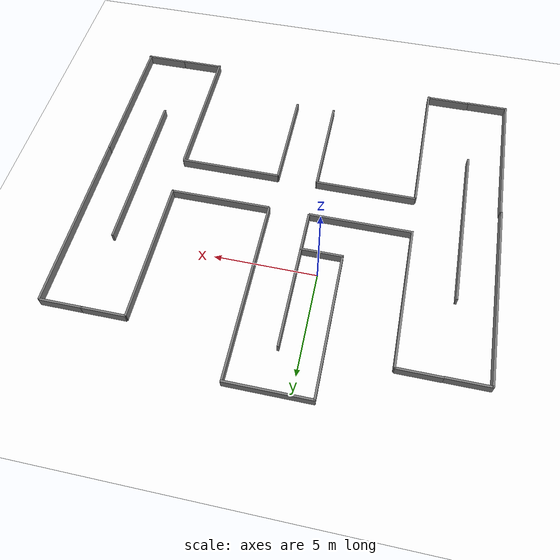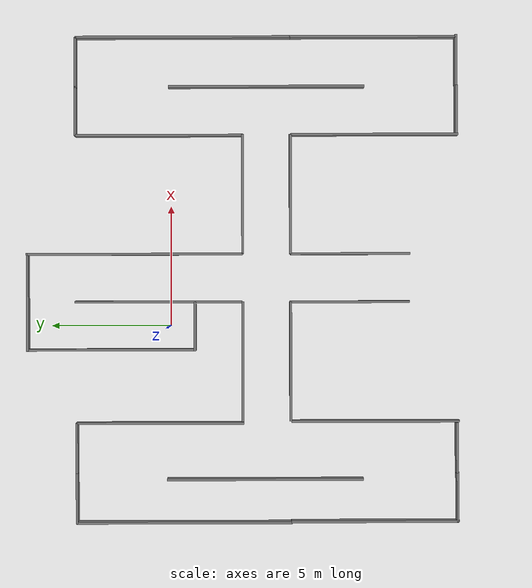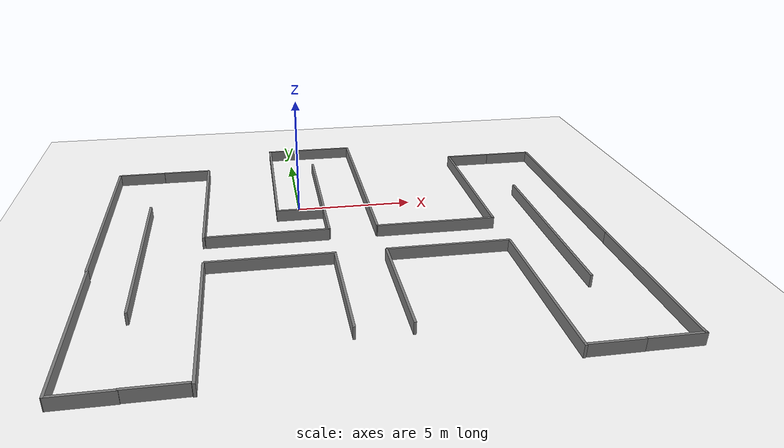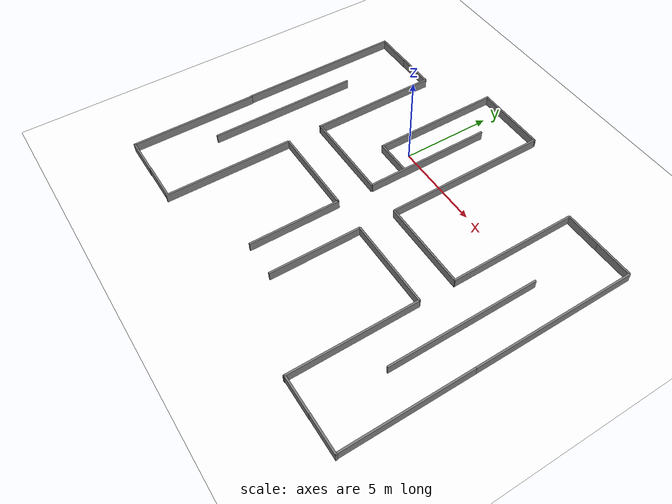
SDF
<sdf version="1.9">
 <world name="step_by_step_city">
  <physics name="1ms" type="ignored">
   <max_step_size>0.001</max_step_size>
   <real_time_factor>1</real_time_factor>
   <real_time_update_rate>1000</real_time_update_rate>
  </physics>
  <plugin name="gz::sim::systems::Physics" filename="ignition-gazebo-physics-system"/>
  <plugin name="gz::sim::systems::UserCommands" filename="ignition-gazebo-user-commands-system"/>
  <plugin name="gz::sim::systems::SceneBroadcaster" filename="ignition-gazebo-scene-broadcaster-system"/>
  <plugin name="gz::sim::systems::Contact" filename="ignition-gazebo-contact-system"/>
  <gravity>0 0 -9.8</gravity>
  <magnetic_field>6e-06 2.3e-05 -4.2e-05</magnetic_field>
  <atmosphere type="adiabatic"/>
  <scene><ambient>0.4 0.4 0.4 1</ambient><background>0.7 0.7 0.7 1</background><shadows>true</shadows></scene>
  <model name="ground_plane">
   <static>true</static>
   <link name="link">
    <collision name="collision">
     <geometry><plane><normal>0 0 1</normal><size>100 100</size></plane></geometry>
    </collision>
    <visual name="visual">
     <geometry><plane><normal>0 0 1</normal><size>100 100</size></plane></geometry>
     <material>
      <ambient>0.8 0.8 0.8</ambient>
      <diffuse>1 1 1 1</diffuse>
      <specular>0.2 0.2 0.2 1</specular>
     </material>
    </visual>
    <inertial>
     <mass>1</mass>
     <inertia><ixx>1</ixx><ixy>0</ixy><ixz>0</ixz><iyy>1</iyy><iyz>0</iyz><izz>1</izz></inertia>
    </inertial>
   </link>
  </model>
  <model name="wall_spawn_back">
   <static>true</static>
   <pose>0 -1 0.25 0 -0 0</pose>
   <link name="link">
    <collision name="collision"><geometry><box><size>2.1 0.1 0.5</size></box></geometry></collision>
    <visual name="visual">
     <geometry><box><size>2.1 0.1 0.5</size></box></geometry>
     <material><ambient>0.5 0.5 0.5 1</ambient></material>
    </visual>
    <inertial>
     <mass>1</mass>
     <inertia><ixx>1</ixx><ixy>0</ixy><ixz>0</ixz><iyy>1</iyy><iyz>0</iyz><izz>1</izz></inertia>
    </inertial>
   </link>
  </model>
  <model name="wall_north_left">
   <static>true</static>
   <pose>-1 2.5 0.25 0 -0 0</pose>
   <link name="link">
    <collision name="collision"><geometry><box><size>0.1 7 0.5</size></box></geometry></collision>
    <visual name="visual">
     <geometry><box><size>0.1 7 0.5</size></box></geometry>
     <material><ambient>0.5 0.5 0.5 1</ambient></material>
    </visual>
    <inertial>
     <mass>1</mass>
     <inertia><ixx>1</ixx><ixy>0</ixy><ixz>0</ixz><iyy>1</iyy><iyz>0</iyz><izz>1</izz></inertia>
    </inertial>
   </link>
  </model>
  <model name="wall_center_div">
   <static>true</static>
   <pose>1 0.51606 0.25 0 -0 0</pose>
   <link name="link">
    <collision name="collision"><geometry><box><size>0.1 7 0.5</size></box></geometry></collision>
    <visual name="visual">
     <geometry><box><size>0.1 7 0.5</size></box></geometry>
     <material><ambient>0.5 0.5 0.5 1</ambient></material>
    </visual>
    <inertial>
     <mass>1</mass>
     <inertia><ixx>1</ixx><ixy>0</ixy><ixz>0</ixz><iyy>1</iyy><iyz>0</iyz><izz>1</izz></inertia>
    </inertial>
   </link>
  </model>
  <model name="wall_uturn_outer">
   <static>true</static>
   <pose>1 6 0.25 0 -0 0</pose>
   <link name="link">
    <collision name="collision"><geometry><box><size>4.1 0.1 0.5</size></box></geometry></collision>
    <visual name="visual">
     <geometry><box><size>4.1 0.1 0.5</size></box></geometry>
     <material><ambient>0.5 0.5 0.5 1</ambient></material>
    </visual>
    <inertial>
     <mass>1</mass>
     <inertia><ixx>1</ixx><ixy>0</ixy><ixz>0</ixz><iyy>1</iyy><iyz>0</iyz><izz>1</izz></inertia>
    </inertial>
   </link>
  </model>
  <model name="wall_south_right">
   <static>true</static>
   <pose>3 1.5 0.25 0 -0 0</pose>
   <link name="link">
    <collision name="collision"><geometry><box><size>0.1 9 0.5</size></box></geometry></collision>
    <visual name="visual">
     <geometry><box><size>0.1 9 0.5</size></box></geometry>
     <material><ambient>0.5 0.5 0.5 1</ambient></material>
    </visual>
    <inertial>
     <mass>1</mass>
     <inertia><ixx>1</ixx><ixy>0</ixy><ixz>0</ixz><iyy>1</iyy><iyz>0</iyz><izz>1</izz></inertia>
    </inertial>
   </link>
  </model>
  <model name="wall_plus_west_top">
   <static>true</static>
   <pose>-1.5 -3 0.25 0 -0 0</pose>
   <link name="link">
    <collision name="collision"><geometry><box><size>5 0.1 0.5</size></box></geometry></collision>
    <visual name="visual">
     <geometry><box><size>5 0.1 0.5</size></box></geometry>
     <material><ambient>0.5 0.5 0.5 1</ambient></material>
    </visual>
    <inertial>
     <mass>1</mass>
     <inertia><ixx>1</ixx><ixy>0</ixy><ixz>0</ixz><iyy>1</iyy><iyz>0</iyz><izz>1</izz></inertia>
    </inertial>
   </link>
  </model>
  <model name="wall_plus_west_bot">
   <static>true</static>
   <pose>-1.5 -5 0.25 0 -0 0</pose>
   <link name="link">
    <collision name="collision"><geometry><box><size>5 0.1 0.5</size></box></geometry></collision>
    <visual name="visual">
     <geometry><box><size>5 0.1 0.5</size></box></geometry>
     <material><ambient>0.5 0.5 0.5 1</ambient></material>
    </visual>
    <inertial>
     <mass>1</mass>
     <inertia><ixx>1</ixx><ixy>0</ixy><ixz>0</ixz><iyy>1</iyy><iyz>0</iyz><izz>1</izz></inertia>
    </inertial>
   </link>
  </model>
  <model name="wall_plus_east_top">
   <static>true</static>
   <pose>5.5 -3 0.25 0 -0 0</pose>
   <link name="link">
    <collision name="collision"><geometry><box><size>5 0.1 0.5</size></box></geometry></collision>
    <visual name="visual">
     <geometry><box><size>5 0.1 0.5</size></box></geometry>
     <material><ambient>0.5 0.5 0.5 1</ambient></material>
    </visual>
    <inertial>
     <mass>1</mass>
     <inertia><ixx>1</ixx><ixy>0</ixy><ixz>0</ixz><iyy>1</iyy><iyz>0</iyz><izz>1</izz></inertia>
    </inertial>
   </link>
  </model>
  <model name="wall_plus_east_bot">
   <static>true</static>
   <pose>5.5 -5 0.25 0 -0 0</pose>
   <link name="link">
    <collision name="collision"><geometry><box><size>5 0.1 0.5</size></box></geometry></collision>
    <visual name="visual">
     <geometry><box><size>5 0.1 0.5</size></box></geometry>
     <material><ambient>0.5 0.5 0.5 1</ambient></material>
    </visual>
    <inertial>
     <mass>1</mass>
     <inertia><ixx>1</ixx><ixy>0</ixy><ixz>0</ixz><iyy>1</iyy><iyz>0</iyz><izz>1</izz></inertia>
    </inertial>
   </link>
  </model>
  <model name="wall_plus_fwd_left">
   <static>true</static>
   <pose>3 -7.5 0.25 0 -0 0</pose>
   <link name="link">
    <collision name="collision"><geometry><box><size>0.1 5 0.5</size></box></geometry></collision>
    <visual name="visual">
     <geometry><box><size>0.1 5 0.5</size></box></geometry>
     <material><ambient>0.5 0.5 0.5 1</ambient></material>
    </visual>
    <inertial>
     <mass>1</mass>
     <inertia><ixx>1</ixx><ixy>0</ixy><ixz>0</ixz><iyy>1</iyy><iyz>0</iyz><izz>1</izz></inertia>
    </inertial>
   </link>
  </model>
  <model name="wall_east_t_outer">
   <static>true</static>
   <pose>10 -4 0.25 0 -0 0</pose>
   <link name="link">
    <collision name="collision"><geometry><box><size>0.1 8.2 0.5</size></box></geometry></collision>
    <visual name="visual">
     <geometry><box><size>0.1 8.2 0.5</size></box></geometry>
     <material><ambient>0.5 0.5 0.5 1</ambient></material>
    </visual>
    <inertial>
     <mass>1</mass>
     <inertia><ixx>1</ixx><ixy>0</ixy><ixz>0</ixz><iyy>1</iyy><iyz>0</iyz><izz>1</izz></inertia>
    </inertial>
   </link>
  </model>
  <model name="wall_east_t_cap_top">
   <static>true</static>
   <pose>9 3.9891 0.25 0 -0 0</pose>
   <link name="link">
    <collision name="collision"><geometry><box><size>2.1 0.1 0.5</size></box></geometry></collision>
    <visual name="visual">
     <geometry><box><size>2.1 0.1 0.5</size></box></geometry>
     <material><ambient>0.5 0.5 0.5 1</ambient></material>
    </visual>
    <inertial>
     <mass>1</mass>
     <inertia><ixx>1</ixx><ixy>0</ixy><ixz>0</ixz><iyy>1</iyy><iyz>0</iyz><izz>1</izz></inertia>
    </inertial>
   </link>
  </model>
  <model name="wall_east_t_cap_bot">
   <static>true</static>
   <pose>9 -11.9384 0.25 0 -0 0</pose>
   <link name="link">
    <collision name="collision"><geometry><box><size>2.1 0.1 0.5</size></box></geometry></collision>
    <visual name="visual">
     <geometry><box><size>2.1 0.1 0.5</size></box></geometry>
     <material><ambient>0.5 0.5 0.5 1</ambient></material>
    </visual>
    <inertial>
     <mass>1</mass>
     <inertia><ixx>1</ixx><ixy>0</ixy><ixz>0</ixz><iyy>1</iyy><iyz>0</iyz><izz>1</izz></inertia>
    </inertial>
   </link>
  </model>
  <model name="wall_center_div_1">
   <static>true</static>
   <pose>7.96048 0.482475 0.25 0 -0 0</pose>
   <link name="link">
    <collision name="collision"><geometry><box><size>0.1 7 0.5</size></box></geometry></collision>
    <visual name="visual">
     <geometry><box><size>0.1 7 0.5</size></box></geometry>
     <material><ambient>0.5 0.5 0.5 1</ambient></material>
    </visual>
   </link>
  </model>
  <model name="wall_center_div_2">
   <static>true</static>
   <pose>7.98632 -8.51239 0.25 0 -0 0</pose>
   <link name="link">
    <collision name="collision"><geometry><box><size>0.1 7 0.5</size></box></geometry></collision>
    <visual name="visual">
     <geometry><box><size>0.1 7 0.5</size></box></geometry>
     <material><ambient>0.5 0.5 0.5 1</ambient></material>
    </visual>
   </link>
  </model>
  <model name="wall_south_right_1">
   <static>true</static>
   <pose>12.069 -0.504548 0.25 0 -0 0</pose>
   <link name="link">
    <collision name="collision"><geometry><box><size>0.1 9 0.5</size></box></geometry></collision>
    <visual name="visual">
     <geometry><box><size>0.1 9 0.5</size></box></geometry>
     <material><ambient>0.5 0.5 0.5 1</ambient></material>
    </visual>
   </link>
  </model>
  <model name="wall_east_t_cap_top_1">
   <static>true</static>
   <pose>11.0163 3.98861 0.25 0 -0 0</pose>
   <link name="link">
    <collision name="collision"><geometry><box><size>2.1 0.1 0.5</size></box></geometry></collision>
    <visual name="visual">
     <geometry><box><size>2.1 0.1 0.5</size></box></geometry>
     <material><ambient>0.5 0.5 0.5 1</ambient></material>
    </visual>
   </link>
  </model>
  <model name="wall_east_t_cap_top_2">
   <static>true</static>
   <pose>11.095 -11.9302 0.25 0 -0 0</pose>
   <link name="link">
    <collision name="collision"><geometry><box><size>2.1 0.1 0.5</size></box></geometry></collision>
    <visual name="visual">
     <geometry><box><size>2.1 0.1 0.5</size></box></geometry>
     <material><ambient>0.5 0.5 0.5 1</ambient></material>
    </visual>
   </link>
  </model>
  <model name="wall_center_div_2_1">
   <static>true</static>
   <pose>12.0694 -8.46295 0.25 0 -0 0</pose>
   <link name="link">
    <collision name="collision"><geometry><box><size>0.1 7 0.5</size></box></geometry></collision>
    <visual name="visual">
     <geometry><box><size>0.1 7 0.5</size></box></geometry>
     <material><ambient>0.5 0.5 0.5 1</ambient></material>
    </visual>
   </link>
  </model>
  <model name="wall_center_div_2_2">
   <static>true</static>
   <pose>-4.00867 -8.53557 0.25 0 -0 0</pose>
   <link name="link">
    <collision name="collision"><geometry><box><size>0.1 7 0.5</size></box></geometry></collision>
    <visual name="visual">
     <geometry><box><size>0.1 7 0.5</size></box></geometry>
     <material><ambient>0.5 0.5 0.5 1</ambient></material>
    </visual>
   </link>
  </model>
  <model name="wall_center_div_1_1">
   <static>true</static>
   <pose>-4.07187 0.451506 0.25 0 -0 0</pose>
   <link name="link">
    <collision name="collision"><geometry><box><size>0.1 7 0.5</size></box></geometry></collision>
    <visual name="visual">
     <geometry><box><size>0.1 7 0.5</size></box></geometry>
     <material><ambient>0.5 0.5 0.5 1</ambient></material>
    </visual>
   </link>
  </model>
  <model name="wall_east_t_cap_top_3">
   <static>true</static>
   <pose>-5.11838 3.94901 0.25 0 -0 0</pose>
   <link name="link">
    <collision name="collision"><geometry><box><size>2.1 0.1 0.5</size></box></geometry></collision>
    <visual name="visual">
     <geometry><box><size>2.1 0.1 0.5</size></box></geometry>
     <material><ambient>0.5 0.5 0.5 1</ambient></material>
    </visual>
   </link>
  </model>
  <model name="wall_east_t_cap_top_4">
   <static>true</static>
   <pose>-7.21036 3.93857 0.25 0 -0 0</pose>
   <link name="link">
    <collision name="collision"><geometry><box><size>2.1 0.1 0.5</size></box></geometry></collision>
    <visual name="visual">
     <geometry><box><size>2.1 0.1 0.5</size></box></geometry>
     <material><ambient>0.5 0.5 0.5 1</ambient></material>
    </visual>
   </link>
  </model>
  <model name="wall_east_t_cap_top_5">
   <static>true</static>
   <pose>-5.12357 -11.9514 0.25 0 -0 0</pose>
   <link name="link">
    <collision name="collision"><geometry><box><size>2.1 0.1 0.5</size></box></geometry></collision>
    <visual name="visual">
     <geometry><box><size>2.1 0.1 0.5</size></box></geometry>
     <material><ambient>0.5 0.5 0.5 1</ambient></material>
    </visual>
   </link>
  </model>
  <model name="wall_east_t_cap_top_6">
   <static>true</static>
   <pose>-7.17296 -11.9699 0.25 0 -0 0</pose>
   <link name="link">
    <collision name="collision"><geometry><box><size>2.1 0.1 0.5</size></box></geometry></collision>
    <visual name="visual">
     <geometry><box><size>2.1 0.1 0.5</size></box></geometry>
     <material><ambient>0.5 0.5 0.5 1</ambient></material>
    </visual>
   </link>
  </model>
  <model name="wall_east_t_outer_1">
   <static>true</static>
   <pose>-6.42833 -3.93282 0.25 0 -0 0</pose>
   <link name="link">
    <collision name="collision"><geometry><box><size>0.1 8.2 0.5</size></box></geometry></collision>
    <visual name="visual">
     <geometry><box><size>0.1 8.2 0.5</size></box></geometry>
     <material><ambient>0.5 0.5 0.5 1</ambient></material>
    </visual>
   </link>
  </model>
  <model name="wall_south_right_1_1">
   <static>true</static>
   <pose>-8.23013 -0.548955 0.25 0 -0 0</pose>
   <link name="link">
    <collision name="collision"><geometry><box><size>0.1 9 0.5</size></box></geometry></collision>
    <visual name="visual">
     <geometry><box><size>0.1 9 0.5</size></box></geometry>
     <material><ambient>0.5 0.5 0.5 1</ambient></material>
    </visual>
   </link>
  </model>
  <model name="wall_center_div_2_1_1">
   <static>true</static>
   <pose>-8.19599 -8.51359 0.25 0 -0 0</pose>
   <link name="link">
    <collision name="collision"><geometry><box><size>0.1 7 0.5</size></box></geometry></collision>
    <visual name="visual">
     <geometry><box><size>0.1 7 0.5</size></box></geometry>
     <material><ambient>0.5 0.5 0.5 1</ambient></material>
    </visual>
   </link>
  </model>
  <model name="wall_plus_fwd_left_1">
   <static>true</static>
   <pose>0.988045 -7.46636 0.25 0 -0 0</pose>
   <link name="link">
    <collision name="collision"><geometry><box><size>0.1 5 0.5</size></box></geometry></collision>
    <visual name="visual">
     <geometry><box><size>0.1 5 0.5</size></box></geometry>
     <material><ambient>0.5 0.5 0.5 1</ambient></material>
    </visual>
   </link>
  </model>
  <light name="sun" type="directional">
   <pose>0 0 10 0 -0 0</pose>
   <cast_shadows>false</cast_shadows>
   <intensity>1.5</intensity>
   <direction>-0.5 0.1 -0.9</direction>
   <diffuse>1 1 1 1</diffuse>
   <specular>0.8 0.8 0.8 1</specular>
   <attenuation><range>10</range><linear>1</linear><constant>1</constant><quadratic>0</quadratic></attenuation>
   <spot><inner_angle>0</inner_angle><outer_angle>0</outer_angle><falloff>0</falloff></spot>
  </light>
 </world>
</sdf>
